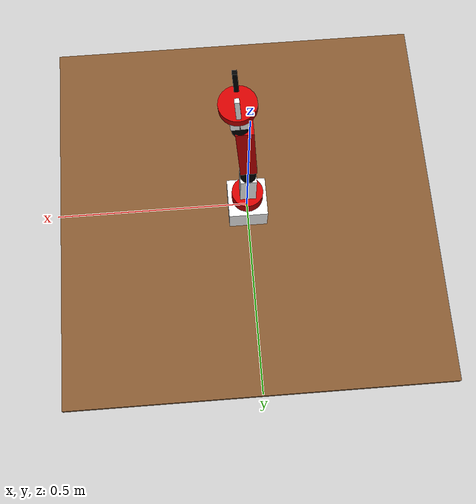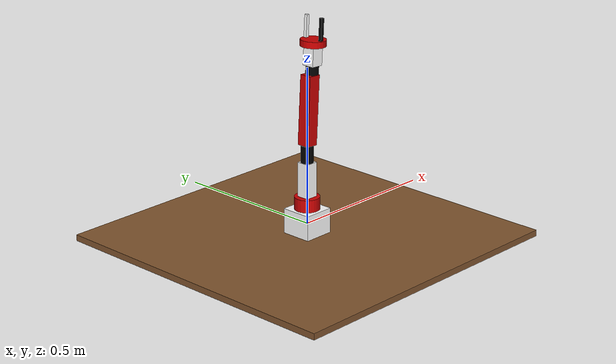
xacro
<?xml version="1.0"?>

<robot name="seven_dof_arm" xmlns:xacro="http://www.ros.org/wiki/xacro">

  <!-- Include materials -->

    <material name="Black">
        <color rgba="0.0 0.0 0.0 1.0"/>
    </material>

    <material name="Red">
        <color rgba="0.8 0.0 0.0 1.0"/>
    </material>

    <material name="White">
        <color rgba="1.0 1.0 1.0 1.0"/>
    </material>

  <!-- Constants -->
  <property name="M_SCALE" value="0.001 0.001 0.001"/>
  <property name="M_PI" value="3.14159"/>

  <!-- Shoulder pan link properties -->
  <property name="shoulder_pan_width" value="0.04" />
  <property name="shoulder_pan_len" value="0.08" />

  <!-- Shoulder pitch link properties -->
  <property name="shoulder_pitch_len" value="0.14" />
  <property name="shoulder_pitch_width" value="0.04" />
  <property name="shoulder_pitch_height" value="0.04" />

  <!-- Elbow roll link properties -->
  <property name="elbow_roll_width" value="0.02" />
  <property name="elbow_roll_len" value="0.06" />

  <!-- Elbow pitch link properties -->
  <property name="elbow_pitch_len" value="0.22" />
  <property name="elbow_pitch_width" value="0.04" />
  <property name="elbow_pitch_height" value="0.04" />

  <!-- Wrist roll link properties -->
  <property name="wrist_roll_width" value="0.02" />
  <property name="wrist_roll_len" value="0.04" />

  <!-- wrist pitch link properties -->
  <property name="wrist_pitch_len" value="0.06" />
  <property name="wrist_pitch_width" value="0.04" />
  <property name="wrist_pitch_height" value="0.04" />

  <!-- Gripper roll link properties -->
  <property name="gripper_roll_width" value="0.04" />
  <property name="gripper_roll_len" value="0.02" />

  <!-- Left gripper -->
  <property name="left_gripper_len" value="0.08" />
  <property name="left_gripper_width" value="0.01" />
  <property name="left_gripper_height" value="0.01" />

  <!-- Right gripper -->
  <property name="right_gripper_len" value="0.08" />
  <property name="right_gripper_width" value="0.01" />
  <property name="right_gripper_height" value="0.01" />

<!-- BOTTOM FIXED LINK
This link is the base of the arm in which arm is placed

-->

  <joint name="bottom_joint" type="fixed">
    <origin xyz="0 0 0" rpy="0 0 0" />
    <parent link="base_link"/>
    <child link="bottom_link"/>
  </joint>

  <link name="bottom_link">

    <inertial>
      <origin xyz=" 0 0 -0.017"/>
      <mass value="100.0" />
      <inertia  ixx="1.0" ixy="0.0"  ixz="0.0"  iyy="100.0"  iyz="0.0"  izz="1.0" />
    </inertial>

    <visual>
      <origin xyz=" 0 0 -0.04"  rpy="0 0 0"/>
      <geometry>

	       <box size="1 1 0.02" />

      </geometry>
      <material name="Brown" />
    </visual>

    <collision>
      <origin xyz=" 0 0 -0.04"  rpy="0 0 0"/>
      <geometry>
	       <box size="1 1 0.02" />
      </geometry>
      </collision>>

  </link>

  <!-- BASE LINK -->
  <link name="base_link">

    <visual>
      <origin xyz="0 0 0" rpy="${M_PI/2} 0 0" /> <!-- rotate PI/2 -->
      <geometry>

	       <box size="0.1 0.1 0.1" />

      </geometry>
      <material name="White" />
    </visual>

    <collision>
      <origin xyz="0 0 0" rpy="${M_PI/2} 0 0" /> <!-- rotate PI/2 -->
      <geometry>

	       <box size="0.1 0.1 0.1" />

      </geometry>
      </collision>>

  </link>

  <gazebo reference="base_link">
    <material>Gazebo/White</material>
  </gazebo>

  <joint name="shoulder_pan_joint" type="revolute">
    <parent link="base_link"/>
    <child link="shoulder_pan_link"/>
    <origin xyz="0 0 0.05" rpy="0 ${M_PI/2} ${M_PI*0}" />
    <axis xyz="-1 0 0" />
    <limit effort="300" velocity="1" lower="-2.61799387799" upper="1.98394848567"/>
    <dynamics damping="50" friction="1"/>
  </joint>

  <!-- SHOULDER PAN LINK -->
  <link name="shoulder_pan_link" >

    <inertial>
      <origin xyz="0 0 0" />
      <mass value="1.0" />
      <inertia  ixx="1.0" ixy="0.0"  ixz="0.0"  iyy="100.0"  iyz="0.0"  izz="1.0" />
    </inertial>

    <visual>
      <origin xyz="0 0 0" rpy="0 ${M_PI/2} 0" />
      <geometry>

            <cylinder radius="${shoulder_pan_width}" length="${shoulder_pan_len}"/>

      </geometry>
      <material name="Red" />
    </visual>

    <collision>
      <origin xyz="0 0 0" rpy="0 ${M_PI/2} 0" />
      <geometry>
            <cylinder radius="${shoulder_pan_width}" length="${shoulder_pan_len}"/>
      </geometry>
    </collision>
  </link>

  <gazebo reference="shoulder_pan_link">
    <material>Gazebo/Red</material>
  </gazebo>

  <joint name="shoulder_pitch_joint" type="revolute">
    <parent link="shoulder_pan_link"/>
    <child link="shoulder_pitch_link"/>
    <origin xyz="-0.041 0.0021 0.0" rpy="-${M_PI/2} 0 ${M_PI/2}" />
    <axis xyz="1 0 0" />
    <limit effort="300" velocity="1" lower="-1.19962513147" upper="1.89994105047" />
    <dynamics damping="50" friction="1"/>
  </joint>

  <!-- SHOULDER PITCH LINK -->
  <link name="shoulder_pitch_link" >

    <inertial>
      <origin xyz="-0.002 0 -0.000"  />
      <mass value="1.0" />
      <inertia  ixx="1.0" ixy="0.0"  ixz="0.0"  iyy="100.0"  iyz="0.0"  izz="1.0" />
    </inertial>

    <visual>
      <origin xyz="-0.002 0 0.04" rpy="0 ${M_PI/2} 0" />
      <geometry>

           <box size="${shoulder_pitch_len} ${shoulder_pitch_width} ${shoulder_pitch_height}" />

      </geometry>
      <material name="White" />
    </visual>

    <collision>
      <origin xyz="-0.002 0 0.04" rpy="0 ${M_PI/2} 0" />
      <geometry>
           <box size="${shoulder_pitch_len} ${shoulder_pitch_width} ${shoulder_pitch_height}" />
      </geometry>
    </collision>

  </link>

  <gazebo reference="shoulder_pitch_link">
    <material>Gazebo/White</material>
  </gazebo>

  <joint name="elbow_roll_joint" type="revolute">
    <parent link="shoulder_pitch_link"/>
    <child link="elbow_roll_link"/>
    <origin xyz="-0.002 0 0.1206" rpy="${M_PI} ${M_PI/2} 0" />
    <axis xyz="-1 0 0" />
    <limit effort="300" velocity="1" lower="-2.61799387799" upper="0.705631162427" />
    <dynamics damping="50" friction="1"/>
  </joint>

  <!-- ELBOW ROLL LINK -->
  <link name="elbow_roll_link" >

    <inertial>
      <origin xyz="-0.035 0.0 0.0"  />
      <mass value="1.0" />
      <inertia  ixx="1.0" ixy="0.0"  ixz="0.0"  iyy="100.0"  iyz="0.0"  izz="1.0" />
    </inertial>

    <visual>
      <origin xyz="-0.015 0.0 -0.0" rpy="0 ${M_PI/2} 0" />
      <geometry>

            <cylinder radius="${elbow_roll_width}" length="${elbow_roll_len}"/>

      </geometry>
      <material name="Black" />
    </visual>

    <collision>
      <origin xyz="-0.035 0.0 -0.0" rpy="0 ${M_PI/2} 0" />
      <geometry>
            <cylinder radius="${elbow_roll_width}" length="${elbow_roll_len}"/>
      </geometry>
    </collision>

  </link>

  <gazebo reference="elbow_roll_link">
    <material>Gazebo/Black</material>
  </gazebo>

  <joint name="elbow_pitch_joint" type="revolute">
    <parent link="elbow_roll_link"/>
    <child link="elbow_pitch_link"/>
    <origin xyz="-0.035 0 0.0" rpy="0.055 ${M_PI/2} 0" />
    <axis xyz="1 0 0" />
    <limit effort="300" velocity="1" lower="-1.5953400194" upper="1.93281579274" />
    <dynamics damping="50" friction="1"/>
  </joint>

  <!-- ELBOW PITCH LINK -->
  <link name="elbow_pitch_link" >

    <inertial>
      <origin xyz="0.0 0 0"  />
      <mass value="1.0" />
      <inertia  ixx="1.0" ixy="0.0"  ixz="0.0"  iyy="100.0"  iyz="0.0"  izz="1.0" />
    </inertial>

    <visual>
      <origin xyz="0 0 -0.12" rpy="0 ${M_PI/2} 0" />
      <geometry>

       <box size="${elbow_pitch_len} ${elbow_pitch_width} ${elbow_pitch_height}" />

      </geometry>
      <material name="Red" />
    </visual>

    <collision>
      <origin xyz="0 0 -0.12" rpy="0 ${M_PI/2} 0" />
      <geometry>
       <box size="${elbow_pitch_len} ${elbow_pitch_width} ${elbow_pitch_height}" />
      </geometry>
    </collision>

  </link>

  <gazebo reference="elbow_pitch_link">
    <material>Gazebo/Red</material>
  </gazebo>

  <joint name="wrist_roll_joint" type="revolute">
    <parent link="elbow_pitch_link"/>
    <child link="wrist_roll_link"/>
    <origin xyz="0.0 0.0081 -.248" rpy="0 ${M_PI/2} ${M_PI}" />
    <axis xyz="1 0 0" />
    <limit effort="300" velocity="1" lower="-2.61799387799" upper="2.6128806087" />
    <dynamics damping="50" friction="1"/>
  </joint>

  <!-- WRIST ROLL LINK -->
  <link name="wrist_roll_link" >

    <inertial>
      <origin xyz="0 0 0"  />
      <mass value="1.0" />
      <inertia  ixx="1.0" ixy="0.0"  ixz="0.0"  iyy="100.0"  iyz="0.0"  izz="1.0" />
    </inertial>

    <visual>
      <origin xyz="0 0 0" rpy="0 ${M_PI/2} 0" />
      <geometry>

           <cylinder radius="${elbow_roll_width}" length="${elbow_roll_len}"/>

      </geometry>
      <material name="Black" />
    </visual>

    <collision>
      <origin xyz="0 0 0" rpy="0 ${M_PI/2} 0" />
      <geometry>
           <cylinder radius="${elbow_roll_width}" length="${elbow_roll_len}"/>
      </geometry>
    </collision>

  </link>

  <gazebo reference="wrist_roll_link">
    <material>Gazebo/Black</material>
  </gazebo>

  <joint name="wrist_pitch_joint" type="revolute">
    <parent link="wrist_roll_link"/>
    <child link="wrist_pitch_link"/>
    <origin xyz="0.0 0.0 0.0001" rpy="0 ${M_PI/2} 0" />
    <axis xyz="1 0 0" />
    <limit effort="300" velocity="1" lower="-1.5953400194" upper="1.98394848567" />
    <dynamics damping="50" friction="1"/>
  </joint>

  <!-- WRIST PITCH LINK -->
  <link name="wrist_pitch_link">

    <inertial>
      <origin xyz="0 0 0"  />
      <mass value="1.0" />
      <inertia  ixx="1.0" ixy="0.0"  ixz="0.0"  iyy="100.0"  iyz="0.0"  izz="1.0" />
    </inertial>

    <visual>
      <origin xyz="0 0 0.04" rpy="0 ${M_PI/2} 0" />
      <geometry>

           <box size="${wrist_pitch_len} ${wrist_pitch_width} ${wrist_pitch_height}" />

      </geometry>
      <material name="White" />
    </visual>

    <collision>
      <origin xyz="0 0 0.04 " rpy="0 ${M_PI/2} 0" />
      <geometry>
          <box size="${wrist_pitch_len} ${wrist_pitch_width} ${wrist_pitch_height}" />
      </geometry>
    </collision>

  </link>

  <gazebo reference="wrist_pitch_link">
    <material>Gazebo/White</material>
  </gazebo>

  <joint name="gripper_roll_joint" type="revolute">
    <parent link="wrist_pitch_link"/>
    <child link="gripper_roll_link"/>
    <origin xyz="0 0 0.080" rpy="${1.5*M_PI} -${.5*M_PI} 0" />
    <axis xyz="1 0 0" />
    <limit effort="300" velocity="1" lower="-2.61799387799" upper="2.6128806087" />
    <dynamics damping="50" friction="1"/>
  </joint>

  <!-- GRIPPER ROLL LINK -->
  <link name="gripper_roll_link">

    <inertial>
      <origin xyz="0 0 0" />
      <mass value="1.0" />
      <inertia  ixx="1.0" ixy="0.0"  ixz="0.0"  iyy="100.0"  iyz="0.0"  izz="1.0" />
    </inertial>

    <visual>
      <origin xyz="0 0 0" rpy="0 ${M_PI/2} 0" />
      <geometry>

            <cylinder radius="${gripper_roll_width}" length="${gripper_roll_len}"/>

      </geometry>
      <material name="Red" />
    </visual>

    <collision>
      <origin xyz="0 0 0" rpy="0 ${M_PI/2} 0" />
      <geometry>
            <cylinder radius="${gripper_roll_width}" length="${gripper_roll_len}"/>
      </geometry>
    </collision>

  </link>

  <gazebo reference="gripper_roll_link">
    <material>Gazebo/Red</material>
  </gazebo>

<!-- Joint between wrist roll and finger 1 -->

  <joint name="finger_joint1" type="prismatic">
    <parent link="gripper_roll_link"/>
    <child link="gripper_finger_link1"/>
    <origin xyz="0.0 0 0" />
    <axis xyz="0 1 0" />
      <limit effort="1" lower="0" upper="0.03" velocity="1.0"/>
    <dynamics damping="50" friction="1"/>
  </joint>

  <!-- LEFT GRIPPER AFT LINK -->
  <link name="gripper_finger_link1">

    <inertial>
      <origin xyz="0 0 0"  />
      <mass value="0.01" />
      <inertia  ixx="1.0" ixy="0.0"  ixz="0.0"  iyy="100.0"  iyz="0.0"  izz="1.0" />
    </inertial>

    <visual>
      <origin xyz="0.04 -0.03 0"/>
      <geometry>

           <box size="${left_gripper_len} ${left_gripper_width} ${left_gripper_height}" />

      </geometry>
      <material name="Black" />
    </visual>

  </link>

  <gazebo reference="l_gripper_aft_link">
    <material>Gazebo/White</material>
  </gazebo>

<!-- Joint between Wrist roll and finger 2 -->

  <joint name="finger_joint2" type="prismatic">
    <parent link="gripper_roll_link"/>
    <child link="gripper_finger_link2"/>
    <origin xyz="0.0 0 0" />
    <axis xyz="0 1 0" />
    <limit effort="1" lower="-0.03" upper="0" velocity="1.0"/>

    <dynamics damping="50" friction="1"/>
  </joint>

  <!-- RIGHT GRIPPER AFT LINK -->

  <link name="gripper_finger_link2">

    <inertial>
      <origin xyz="0.0 0.0 0"  />
      <mass value="1.0" />
      <inertia  ixx="1.0" ixy="0.0"  ixz="0.0"  iyy="100.0"  iyz="0.0"  izz="1.0" />
    </inertial>

    <visual>
      <origin xyz="0.04 0.03 0"/>
      <geometry>

          <box size="${right_gripper_len} ${right_gripper_width} ${right_gripper_height}" />

      </geometry>
      <material name="White" />
    </visual>

  </link>

  <gazebo reference="r_gripper_aft_link">
    <material>Gazebo/White</material>
  </gazebo>

  <!-- Transmissions for ROS Control -->
  <transmission name="tran1">
    <type>transmission_interface/SimpleTransmission</type>
    <joint name="shoulder_pan_joint">
      <hardwareInterface>PositionJointInterface</hardwareInterface>
    </joint>
    <actuator name="motor1">
      <hardwareInterface>PositionJointInterface</hardwareInterface>
      <mechanicalReduction>1</mechanicalReduction>
    </actuator>
  </transmission>

  <transmission name="tran1">
    <type>transmission_interface/SimpleTransmission</type>
    <joint name="shoulder_pitch_joint">
      <hardwareInterface>PositionJointInterface</hardwareInterface>
    </joint>
    <actuator name="motor1">
      <hardwareInterface>PositionJointInterface</hardwareInterface>
      <mechanicalReduction>1</mechanicalReduction>
    </actuator>
  </transmission>

  <transmission name="tran1">
    <type>transmission_interface/SimpleTransmission</type>
    <joint name="elbow_roll_joint">
      <hardwareInterface>PositionJointInterface</hardwareInterface>
    </joint>
    <actuator name="motor1">
      <hardwareInterface>PositionJointInterface</hardwareInterface>
      <mechanicalReduction>1</mechanicalReduction>
    </actuator>
  </transmission>

  <transmission name="tran1">
    <type>transmission_interface/SimpleTransmission</type>
    <joint name="elbow_pitch_joint">
      <hardwareInterface>PositionJointInterface</hardwareInterface>
    </joint>
    <actuator name="motor1">
      <hardwareInterface>PositionJointInterface</hardwareInterface>
      <mechanicalReduction>1</mechanicalReduction>
    </actuator>
  </transmission>

  <transmission name="tran1">
    <type>transmission_interface/SimpleTransmission</type>
    <joint name="wrist_roll_joint">
      <hardwareInterface>PositionJointInterface</hardwareInterface>
    </joint>
    <actuator name="motor1">
      <hardwareInterface>PositionJointInterface</hardwareInterface>
      <mechanicalReduction>1</mechanicalReduction>
    </actuator>
  </transmission>

  <transmission name="tran1">
    <type>transmission_interface/SimpleTransmission</type>
    <joint name="wrist_pitch_joint">
      <hardwareInterface>PositionJointInterface</hardwareInterface>
    </joint>
    <actuator name="motor1">
      <hardwareInterface>PositionJointInterface</hardwareInterface>
      <mechanicalReduction>1</mechanicalReduction>
    </actuator>
  </transmission>

  <transmission name="tran1">
    <type>transmission_interface/SimpleTransmission</type>
    <joint name="gripper_roll_joint">
      <hardwareInterface>PositionJointInterface</hardwareInterface>
    </joint>
    <actuator name="motor1">
      <hardwareInterface>PositionJointInterface</hardwareInterface>
      <mechanicalReduction>1</mechanicalReduction>
    </actuator>
  </transmission>

  <transmission name="tran1">
    <type>transmission_interface/SimpleTransmission</type>
    <joint name="finger_joint1">
      <hardwareInterface>PositionJointInterface</hardwareInterface>
    </joint>
    <actuator name="motor1">
      <hardwareInterface>PositionJointInterface</hardwareInterface>
      <mechanicalReduction>1</mechanicalReduction>
    </actuator>
  </transmission>

  <transmission name="tran1">
    <type>transmission_interface/SimpleTransmission</type>
    <joint name="finger_joint2">
      <hardwareInterface>PositionJointInterface</hardwareInterface>
    </joint>
    <actuator name="motor1">
      <hardwareInterface>PositionJointInterface</hardwareInterface>
      <mechanicalReduction>1</mechanicalReduction>
    </actuator>
  </transmission>

  <!-- ros_control plugin -->
  <gazebo>
    <plugin name="gazebo_ros_control" filename="libgazebo_ros_control.so">
      <robotNamespace>/seven_arm</robotNamespace>
      <robotSimType>gazebo_ros_control/DefaultRobotHWSim</robotSimType>
      <controlPeriod>0.001</controlPeriod>
    </plugin>
  </gazebo>

  <!-- FAKE CAMERA CALIBRATION POINT AT GRIPPER TIP -->

</robot>
